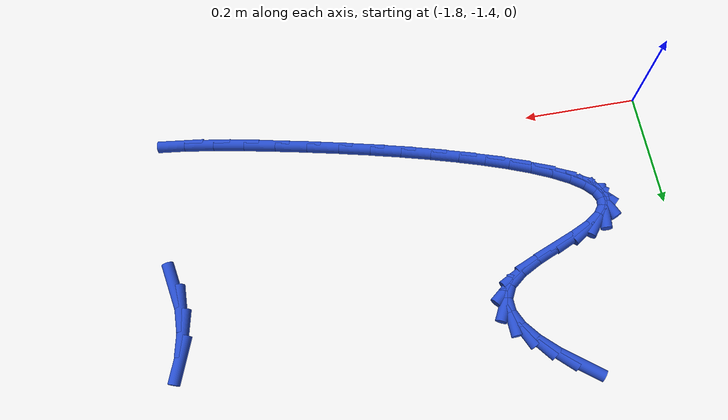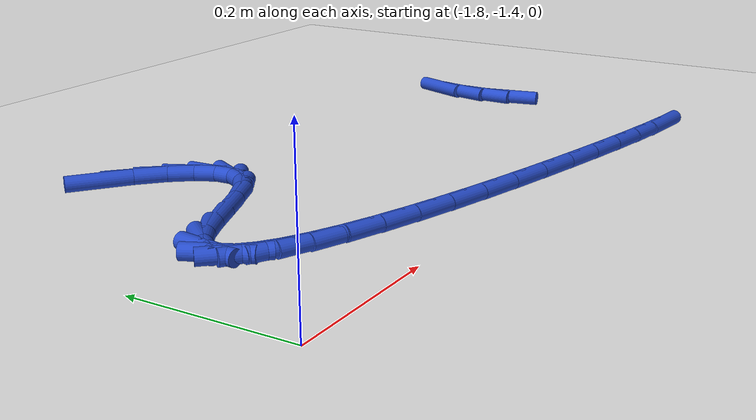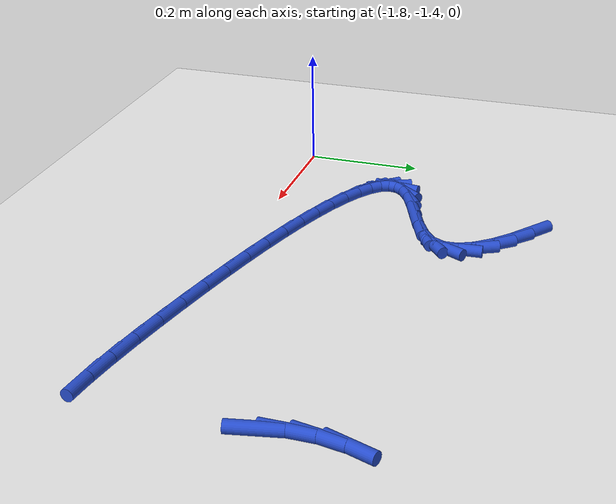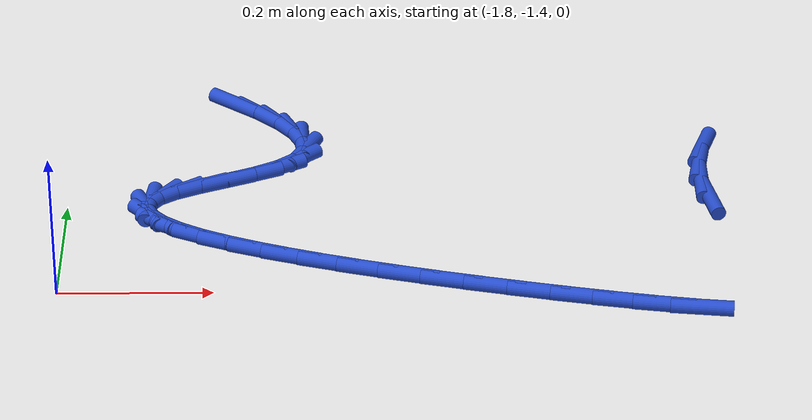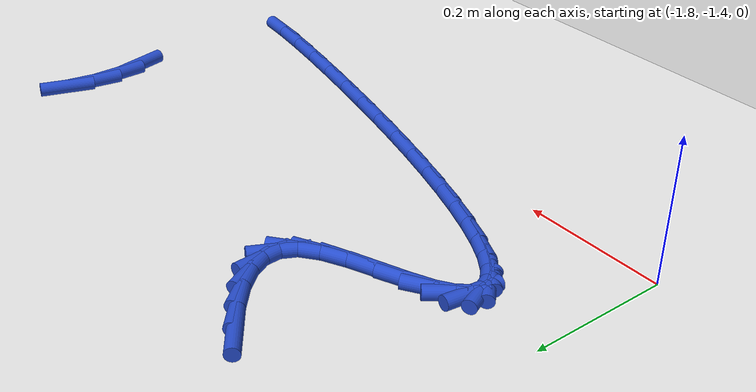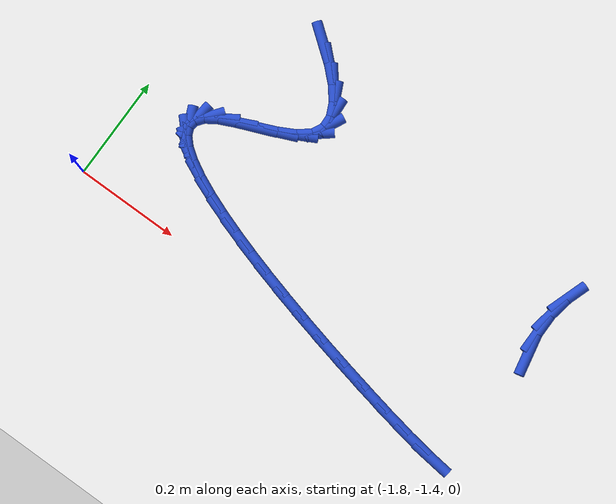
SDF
<sdf version="1.6">
 <world name="default">
  <model name="ground_plane">
   <static>1</static>
   <link name="link">
    <collision name="collision">
     <geometry><plane><normal>0 0 1</normal><size>100 100</size></plane></geometry>
     <surface><friction><ode><mu>100</mu><mu2>50</mu2></ode></friction></surface>
    </collision>
    <visual name="visual">
     <cast_shadows>0</cast_shadows>
     <geometry><plane><normal>0 0 1</normal><size>100 100</size></plane></geometry>
     <material>
      <script><uri>file://media/materials/scripts/gazebo.material</uri><name>Gazebo/WhiteGlow</name></script>
     </material>
    </visual>
   </link>
  </model>
  <model name="line">
   <link name="link_175">
    <pose>-1.5855679383168042 -0.9512149015515701 0.01 0 1.57 -0.6602920735202354</pose>
    <collision name="collision">
     <geometry><cylinder><radius>0.01</radius><length>0.08</length></cylinder></geometry>
    </collision>
    <visual name="visual">
     <material>
      <script><name>Gazebo/Blue</name><uri>file://media/materials/scripts/gazebo.material</uri></script>
     </material>
     <geometry><cylinder><radius>0.01</radius><length>0.08</length></cylinder></geometry>
    </visual>
   </link>
   <link name="link_176">
    <pose>-1.551884870613537 -0.9773722631510485 0.01 0 1.57 -0.758292725337077</pose>
    <collision name="collision">
     <geometry><cylinder><radius>0.01</radius><length>0.08</length></cylinder></geometry>
    </collision>
    <visual name="visual">
     <material>
      <script><name>Gazebo/Blue</name><uri>file://media/materials/scripts/gazebo.material</uri></script>
     </material>
     <geometry><cylinder><radius>0.01</radius><length>0.08</length></cylinder></geometry>
    </visual>
   </link>
   <link name="link_177">
    <pose>-1.524020390709718 -1.0037656982223577 0.01 0 1.57 -0.9031473591751735</pose>
    <collision name="collision">
     <geometry><cylinder><radius>0.01</radius><length>0.08</length></cylinder></geometry>
    </collision>
    <visual name="visual">
     <material>
      <script><name>Gazebo/Blue</name><uri>file://media/materials/scripts/gazebo.material</uri></script>
     </material>
     <geometry><cylinder><radius>0.01</radius><length>0.08</length></cylinder></geometry>
    </visual>
   </link>
   <link name="link_178">
    <pose>-1.5035039852908185 -1.0297873946418483 0.01 0 1.57 -1.1357275761328092</pose>
    <collision name="collision">
     <geometry><cylinder><radius>0.01</radius><length>0.08</length></cylinder></geometry>
    </collision>
    <visual name="visual">
     <material>
      <script><name>Gazebo/Blue</name><uri>file://media/materials/scripts/gazebo.material</uri></script>
     </material>
     <geometry><cylinder><radius>0.01</radius><length>0.08</length></cylinder></geometry>
    </visual>
   </link>
   <link name="link_179">
    <pose>-1.4918651410423112 -1.0548295402858734 0.01 0 1.57 -1.5183266113070093</pose>
    <collision name="collision">
     <geometry><cylinder><radius>0.01</radius><length>0.08</length></cylinder></geometry>
    </collision>
    <visual name="visual">
     <material>
      <script><name>Gazebo/Blue</name><uri>file://media/materials/scripts/gazebo.material</uri></script>
     </material>
     <geometry><cylinder><radius>0.01</radius><length>0.08</length></cylinder></geometry>
    </visual>
   </link>
   <link name="link_180">
    <pose>-1.4906333446496682 -1.0782843230307846 0.01 0 1.57 1.1043387442621708</pose>
    <collision name="collision">
     <geometry><cylinder><radius>0.01</radius><length>0.08</length></cylinder></geometry>
    </collision>
    <visual name="visual">
     <material>
      <script><name>Gazebo/Blue</name><uri>file://media/materials/scripts/gazebo.material</uri></script>
     </material>
     <geometry><cylinder><radius>0.01</radius><length>0.08</length></cylinder></geometry>
    </visual>
   </link>
   <link name="link_181">
    <pose>-1.5013379418391484 -1.099543959350624 0.01 0 1.57 0.6825207719854289</pose>
    <collision name="collision">
     <geometry><cylinder><radius>0.01</radius><length>0.08</length></cylinder></geometry>
    </collision>
    <visual name="visual">
     <material>
      <script><name>Gazebo/Blue</name><uri>file://media/materials/scripts/gazebo.material</uri></script>
     </material>
     <geometry><cylinder><radius>0.01</radius><length>0.08</length></cylinder></geometry>
    </visual>
   </link>
   <link name="link_182">
    <pose>-1.5243368039609335 -1.1182383334760986 0.01 0 1.57 0.4825123394178639</pose>
    <collision name="collision">
     <geometry><cylinder><radius>0.01</radius><length>0.08</length></cylinder></geometry>
    </collision>
    <visual name="visual">
     <material>
      <script><name>Gazebo/Blue</name><uri>file://media/materials/scripts/gazebo.material</uri></script>
     </material>
     <geometry><cylinder><radius>0.01</radius><length>0.08</length></cylinder></geometry>
    </visual>
   </link>
   <link name="link_183">
    <pose>-1.5559760462937122 -1.134811231405876 0.01 0 1.57 0.3987412851978744</pose>
    <collision name="collision">
     <geometry><cylinder><radius>0.01</radius><length>0.08</length></cylinder></geometry>
    </collision>
    <visual name="visual">
     <material>
      <script><name>Gazebo/Blue</name><uri>file://media/materials/scripts/gazebo.material</uri></script>
     </material>
     <geometry><cylinder><radius>0.01</radius><length>0.08</length></cylinder></geometry>
    </visual>
   </link>
   <link name="link_184">
    <pose>-1.5917437232433929 -1.14988052182185 0.01 0 1.57 0.38123426182890185</pose>
    <collision name="collision">
     <geometry><cylinder><radius>0.01</radius><length>0.08</length></cylinder></geometry>
    </collision>
    <visual name="visual">
     <material>
      <script><name>Gazebo/Blue</name><uri>file://media/materials/scripts/gazebo.material</uri></script>
     </material>
     <geometry><cylinder><radius>0.01</radius><length>0.08</length></cylinder></geometry>
    </visual>
   </link>
   <link name="link_185">
    <pose>-1.6271278892158831 -1.1640640734059124 0.01 0 1.57 0.4281806273980959</pose>
    <collision name="collision">
     <geometry><cylinder><radius>0.01</radius><length>0.08</length></cylinder></geometry>
    </collision>
    <visual name="visual">
     <material>
      <script><name>Gazebo/Blue</name><uri>file://media/materials/scripts/gazebo.material</uri></script>
     </material>
     <geometry><cylinder><radius>0.01</radius><length>0.08</length></cylinder></geometry>
    </visual>
   </link>
   <link name="link_186">
    <pose>-1.657616598617091 -1.1779797548399573 0.01 0 1.57 0.5863615351898464</pose>
    <collision name="collision">
     <geometry><cylinder><radius>0.01</radius><length>0.08</length></cylinder></geometry>
    </collision>
    <visual name="visual">
     <material>
      <script><name>Gazebo/Blue</name><uri>file://media/materials/scripts/gazebo.material</uri></script>
     </material>
     <geometry><cylinder><radius>0.01</radius><length>0.08</length></cylinder></geometry>
    </visual>
   </link>
   <link name="link_187">
    <pose>-1.6790253104768758 -1.1922015369303085 0.01 0 1.57 0.915490491863826</pose>
    <collision name="collision">
     <geometry><cylinder><radius>0.01</radius><length>0.08</length></cylinder></geometry>
    </collision>
    <visual name="visual">
     <material>
      <script><name>Gazebo/Blue</name><uri>file://media/materials/scripts/gazebo.material</uri></script>
     </material>
     <geometry><cylinder><radius>0.01</radius><length>0.08</length></cylinder></geometry>
    </visual>
   </link>
   <link name="link_188">
    <pose>-1.6903091941323372 -1.2068824232693074 0.01 0 1.57 1.4477290247132542</pose>
    <collision name="collision">
     <geometry><cylinder><radius>0.01</radius><length>0.08</length></cylinder></geometry>
    </collision>
    <visual name="visual">
     <material>
      <script><name>Gazebo/Blue</name><uri>file://media/materials/scripts/gazebo.material</uri></script>
     </material>
     <geometry><cylinder><radius>0.01</radius><length>0.08</length></cylinder></geometry>
    </visual>
   </link>
   <link name="link_189">
    <pose>-1.692171824848598 -1.2219409940470065 0.01 0 1.57 -1.1518695813024138</pose>
    <collision name="collision">
     <geometry><cylinder><radius>0.01</radius><length>0.08</length></cylinder></geometry>
    </collision>
    <visual name="visual">
     <material>
      <script><name>Gazebo/Blue</name><uri>file://media/materials/scripts/gazebo.material</uri></script>
     </material>
     <geometry><cylinder><radius>0.01</radius><length>0.08</length></cylinder></geometry>
    </visual>
   </link>
   <link name="link_190">
    <pose>-1.6853356609545669 -1.2372932976432016 0.01 0 1.57 -0.8100711756723233</pose>
    <collision name="collision">
     <geometry><cylinder><radius>0.01</radius><length>0.08</length></cylinder></geometry>
    </collision>
    <visual name="visual">
     <material>
      <script><name>Gazebo/Blue</name><uri>file://media/materials/scripts/gazebo.material</uri></script>
     </material>
     <geometry><cylinder><radius>0.01</radius><length>0.08</length></cylinder></geometry>
    </visual>
   </link>
   <link name="link_191">
    <pose>-1.6705231607791553 -1.252855382437688 0.01 0 1.57 -0.6180318825942991</pose>
    <collision name="collision">
     <geometry><cylinder><radius>0.01</radius><length>0.08</length></cylinder></geometry>
    </collision>
    <visual name="visual">
     <material>
      <script><name>Gazebo/Blue</name><uri>file://media/materials/scripts/gazebo.material</uri></script>
     </material>
     <geometry><cylinder><radius>0.01</radius><length>0.08</length></cylinder></geometry>
    </visual>
   </link>
   <link name="link_192">
    <pose>-1.6484567826512744 -1.2685432968102632 0.01 0 1.57 -0.5028701529188303</pose>
    <collision name="collision">
     <geometry><cylinder><radius>0.01</radius><length>0.08</length></cylinder></geometry>
    </collision>
    <visual name="visual">
     <material>
      <script><name>Gazebo/Blue</name><uri>file://media/materials/scripts/gazebo.material</uri></script>
     </material>
     <geometry><cylinder><radius>0.01</radius><length>0.08</length></cylinder></geometry>
    </visual>
   </link>
   <link name="link_193">
    <pose>-1.619858984899833 -1.2842730891407226 0.01 0 1.57 -0.42778988059739903</pose>
    <collision name="collision">
     <geometry><cylinder><radius>0.01</radius><length>0.08</length></cylinder></geometry>
    </collision>
    <visual name="visual">
     <material>
      <script><name>Gazebo/Blue</name><uri>file://media/materials/scripts/gazebo.material</uri></script>
     </material>
     <geometry><cylinder><radius>0.01</radius><length>0.08</length></cylinder></geometry>
    </visual>
   </link>
   <link name="link_194">
    <pose>-1.585452225853743 -1.2999608078088625 0.01 0 1.57 -0.3753528348374835</pose>
    <collision name="collision">
     <geometry><cylinder><radius>0.01</radius><length>0.08</length></cylinder></geometry>
    </collision>
    <visual name="visual">
     <material>
      <script><name>Gazebo/Blue</name><uri>file://media/materials/scripts/gazebo.material</uri></script>
     </material>
     <geometry><cylinder><radius>0.01</radius><length>0.08</length></cylinder></geometry>
    </visual>
   </link>
   <link name="link_195">
    <pose>-1.5459589638419133 -1.3155225011944793 0.01 0 1.57 -0.3367085212378141</pose>
    <collision name="collision">
     <geometry><cylinder><radius>0.01</radius><length>0.08</length></cylinder></geometry>
    </collision>
    <visual name="visual">
     <material>
      <script><name>Gazebo/Blue</name><uri>file://media/materials/scripts/gazebo.material</uri></script>
     </material>
     <geometry><cylinder><radius>0.01</radius><length>0.08</length></cylinder></geometry>
    </visual>
   </link>
   <link name="link_196">
    <pose>-1.5021016571932553 -1.33087421767737 0.01 0 1.57 -0.30699146654691</pose>
    <collision name="collision">
     <geometry><cylinder><radius>0.01</radius><length>0.08</length></cylinder></geometry>
    </collision>
    <visual name="visual">
     <material>
      <script><name>Gazebo/Blue</name><uri>file://media/materials/scripts/gazebo.material</uri></script>
     </material>
     <geometry><cylinder><radius>0.01</radius><length>0.08</length></cylinder></geometry>
    </visual>
   </link>
   <link name="link_197">
    <pose>-1.454602764236679 -1.3459320056373294 0.01 0 1.57 -0.2833307007110829</pose>
    <collision name="collision">
     <geometry><cylinder><radius>0.01</radius><length>0.08</length></cylinder></geometry>
    </collision>
    <visual name="visual">
     <material>
      <script><name>Gazebo/Blue</name><uri>file://media/materials/scripts/gazebo.material</uri></script>
     </material>
     <geometry><cylinder><radius>0.01</radius><length>0.08</length></cylinder></geometry>
    </visual>
   </link>
   <link name="link_198">
    <pose>-1.4041847433010948 -1.360611913454155 0.01 0 1.57 -0.26392633985008246</pose>
    <collision name="collision">
     <geometry><cylinder><radius>0.01</radius><length>0.08</length></cylinder></geometry>
    </collision>
    <visual name="visual">
     <material>
      <script><name>Gazebo/Blue</name><uri>file://media/materials/scripts/gazebo.material</uri></script>
     </material>
     <geometry><cylinder><radius>0.01</radius><length>0.08</length></cylinder></geometry>
    </visual>
   </link>
   <link name="link_199">
    <pose>-1.3515700527154109 -1.3748299895076421 0.01 0 1.57 -0.247588204880641</pose>
    <collision name="collision">
     <geometry><cylinder><radius>0.01</radius><length>0.08</length></cylinder></geometry>
    </collision>
    <visual name="visual">
     <material>
      <script><name>Gazebo/Blue</name><uri>file://media/materials/scripts/gazebo.material</uri></script>
     </material>
     <geometry><cylinder><radius>0.01</radius><length>0.08</length></cylinder></geometry>
    </visual>
   </link>
   <link name="link_200">
    <pose>-1.2974811508085418 -1.3885022821775874 0.01 0 1.57 -0.2334887869083684</pose>
    <collision name="collision">
     <geometry><cylinder><radius>0.01</radius><length>0.08</length></cylinder></geometry>
    </collision>
    <visual name="visual">
     <material>
      <script><name>Gazebo/Blue</name><uri>file://media/materials/scripts/gazebo.material</uri></script>
     </material>
     <geometry><cylinder><radius>0.01</radius><length>0.08</length></cylinder></geometry>
    </visual>
   </link>
   <link name="link_201">
    <pose>-1.2426404959093957 -1.401544839843787 0.01 0 1.57 -0.22102182516702149</pose>
    <collision name="collision">
     <geometry><cylinder><radius>0.01</radius><length>0.08</length></cylinder></geometry>
    </collision>
    <visual name="visual">
     <material>
      <script><name>Gazebo/Blue</name><uri>file://media/materials/scripts/gazebo.material</uri></script>
     </material>
     <geometry><cylinder><radius>0.01</radius><length>0.08</length></cylinder></geometry>
    </visual>
   </link>
   <link name="link_202">
    <pose>-1.1877705463468828 -1.4138737108860366 0.01 0 1.57 -0.20968004134153614</pose>
    <collision name="collision">
     <geometry><cylinder><radius>0.01</radius><length>0.08</length></cylinder></geometry>
    </collision>
    <visual name="visual">
     <material>
      <script><name>Gazebo/Blue</name><uri>file://media/materials/scripts/gazebo.material</uri></script>
     </material>
     <geometry><cylinder><radius>0.01</radius><length>0.08</length></cylinder></geometry>
    </visual>
   </link>
   <link name="link_203">
    <pose>-1.1335951854042012 -1.4254026596291722 0.01 0 1.57 -0.1970839091186463</pose>
    <collision name="collision">
     <geometry><cylinder><radius>0.01</radius><length>0.08</length></cylinder></geometry>
    </collision>
    <visual name="visual">
     <material>
      <script><name>Gazebo/Blue</name><uri>file://media/materials/scripts/gazebo.material</uri></script>
     </material>
     <geometry><cylinder><radius>0.01</radius><length>0.08</length></cylinder></geometry>
    </visual>
   </link>
   <link name="link_204">
    <pose>-1.080915626506934 -1.4359214981442785 0.01 0 1.57 -0.17935475452152408</pose>
    <collision name="collision">
     <geometry><cylinder><radius>0.01</radius><length>0.08</length></cylinder></geometry>
    </collision>
    <visual name="visual">
     <material>
      <script><name>Gazebo/Blue</name><uri>file://media/materials/scripts/gazebo.material</uri></script>
     </material>
     <geometry><cylinder><radius>0.01</radius><length>0.08</length></cylinder></geometry>
    </visual>
   </link>
   <link name="link_205">
    <pose>-1.0306484706659809 -1.4450350840873372 0.01 0 1.57 -0.15427853332269512</pose>
    <collision name="collision">
     <geometry><cylinder><radius>0.01</radius><length>0.08</length></cylinder></geometry>
    </collision>
    <visual name="visual">
     <material>
      <script><name>Gazebo/Blue</name><uri>file://media/materials/scripts/gazebo.material</uri></script>
     </material>
     <geometry><cylinder><radius>0.01</radius><length>0.08</length></cylinder></geometry>
    </visual>
   </link>
   <link name="link_206">
    <pose>-0.9837197395933088 -1.45233317470079 0.01 0 1.57 -0.1183344411866482</pose>
    <collision name="collision">
     <geometry><cylinder><radius>0.01</radius><length>0.08</length></cylinder></geometry>
    </collision>
    <visual name="visual">
     <material>
      <script><name>Gazebo/Blue</name><uri>file://media/materials/scripts/gazebo.material</uri></script>
     </material>
     <geometry><cylinder><radius>0.01</radius><length>0.08</length></cylinder></geometry>
    </visual>
   </link>
   <link name="link_220">
    <pose>-0.9510146818436105 -1.1994854463529285 0.01 0 1.57 -1.3768131587264154</pose>
    <collision name="collision">
     <geometry><cylinder><radius>0.01</radius><length>0.08</length></cylinder></geometry>
    </collision>
    <visual name="visual">
     <material>
      <script><name>Gazebo/Blue</name><uri>file://media/materials/scripts/gazebo.material</uri></script>
     </material>
     <geometry><cylinder><radius>0.01</radius><length>0.08</length></cylinder></geometry>
    </visual>
   </link>
   <link name="link_221">
    <pose>-0.9590305994525995 -1.1586823207967036 0.01 0 1.57 1.5660897973066192</pose>
    <collision name="collision">
     <geometry><cylinder><radius>0.01</radius><length>0.08</length></cylinder></geometry>
    </collision>
    <visual name="visual">
     <material>
      <script><name>Gazebo/Blue</name><uri>file://media/materials/scripts/gazebo.material</uri></script>
     </material>
     <geometry><cylinder><radius>0.01</radius><length>0.08</length></cylinder></geometry>
    </visual>
   </link>
   <link name="link_222">
    <pose>-0.9588332978890766 -1.116761812877735 0.01 0 1.57 1.387169458274803</pose>
    <collision name="collision">
     <geometry><cylinder><radius>0.01</radius><length>0.08</length></cylinder></geometry>
    </collision>
    <visual name="visual">
     <material>
      <script><name>Gazebo/Blue</name><uri>file://media/materials/scripts/gazebo.material</uri></script>
     </material>
     <geometry><cylinder><radius>0.01</radius><length>0.08</length></cylinder></geometry>
    </visual>
   </link>
   <link name="link_223">
    <pose>-0.9509583018411822 -1.0743590608963947 0.01 0 1.57 1.2375839449421269</pose>
    <collision name="collision">
     <geometry><cylinder><radius>0.01</radius><length>0.08</length></cylinder></geometry>
    </collision>
    <visual name="visual">
     <material>
      <script><name>Gazebo/Blue</name><uri>file://media/materials/scripts/gazebo.material</uri></script>
     </material>
     <geometry><cylinder><radius>0.01</radius><length>0.08</length></cylinder></geometry>
    </visual>
   </link>
  </model>
 </world>
</sdf>
